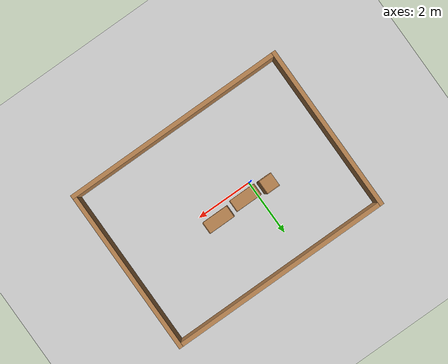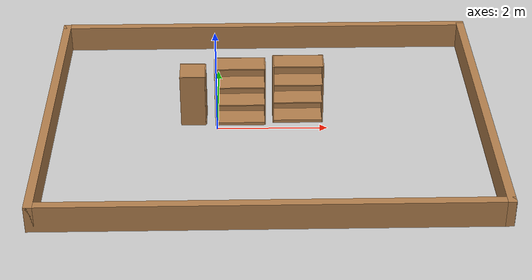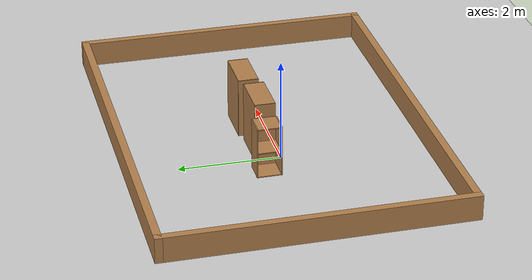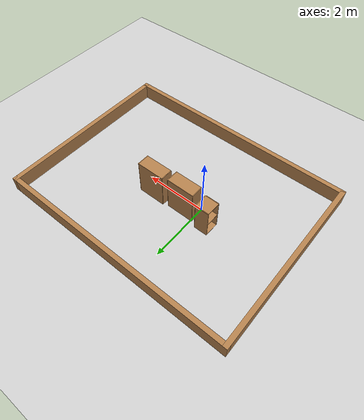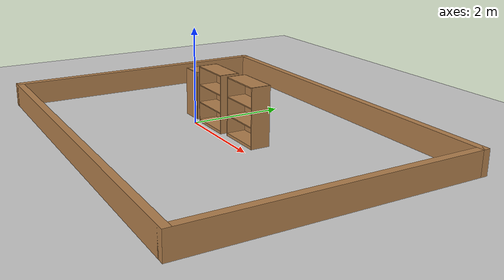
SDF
<sdf version="1.6">
 <world name="default">
  <light name="sun" type="directional">
   <pose>0 0 10 0 -0 0</pose>
   <diffuse>0.8 0.8 0.8 1</diffuse>
   <specular>0.1 0.1 0.1 1</specular>
   <attenuation>
    <range>1000</range>
    <constant>0.9</constant>
    <linear>0.01</linear>
    <quadratic>0.001</quadratic>
   </attenuation>
   <direction>-0.5 0.5 -1</direction>
  </light>
  <model name="ground_plane">
   <static>1</static>
   <link name="link">
    <collision name="collision">
     <geometry><plane><normal>0 0 1</normal><size>100 100</size></plane></geometry>
     <surface><friction><ode><mu>100</mu><mu2>50</mu2></ode></friction></surface>
    </collision>
    <visual name="visual">
     <cast_shadows>0</cast_shadows>
     <geometry><plane><normal>0 0 1</normal><size>100 100</size></plane></geometry>
     <material>
      <script><uri>file://media/materials/scripts/gazebo.material</uri><name>Gazebo/Grey</name></script>
     </material>
    </visual>
   </link>
  </model>
  <gravity>0 0 -9.8</gravity>
  <magnetic_field>6e-06 2.3e-05 -4.2e-05</magnetic_field>
  <atmosphere type="adiabatic"/>
  <physics name="default_physics" default="0" type="ode">
   <max_step_size>0.001</max_step_size>
   <real_time_factor>1</real_time_factor>
   <real_time_update_rate>1000</real_time_update_rate>
  </physics>
  <scene><ambient>0.4 0.4 0.4 1</ambient><background>0.7 0.7 0.7 1</background><shadows>1</shadows></scene>
  <spherical_coordinates>
   <surface_model>EARTH_WGS84</surface_model>
   <latitude_deg>0</latitude_deg>
   <longitude_deg>0</longitude_deg>
   <elevation>0</elevation>
   <heading_deg>0</heading_deg>
  </spherical_coordinates>
  <model name="cabinet">
   <static>1</static>
   <link name="cabinet_bottom_plate">
    <inertial>
     <pose>0 0 -1 0 -0 0</pose>
     <inertia><ixx>2.05</ixx><ixy>0</ixy><ixz>0</ixz><iyy>2.05</iyy><iyz>0</iyz><izz>2.05</izz></inertia>
     <mass>25</mass>
    </inertial>
    <collision name="cabinet_bottom_plate_geom">
     <pose>0 0 0.01 0 -0 0</pose>
     <geometry><box><size>0.45 0.45 0.02</size></box></geometry>
    </collision>
    <visual name="cabinet_bottom_plate_geom_visual">
     <pose>0 0 0.01 0 -0 0</pose>
     <geometry><box><size>0.45 0.45 0.02</size></box></geometry>
     <material>
      <script><uri>file://media/materials/scripts/gazebo.material</uri><name>Gazebo/Wood</name></script>
     </material>
    </visual>
    <collision name="cabinet_bottom_plate_geom_cabinet_back_plate">
     <pose>0.235 0 0.51 0 -0 0</pose>
     <geometry><box><size>0.02 0.45 1.02</size></box></geometry>
    </collision>
    <visual name="cabinet_bottom_plate_geom_cabinet_back_plate_visual">
     <pose>0.235 0 0.51 0 -0 0</pose>
     <geometry><box><size>0.02 0.45 1.02</size></box></geometry>
     <material>
      <script><uri>file://media/materials/scripts/gazebo.material</uri><name>Gazebo/Wood</name></script>
     </material>
    </visual>
    <collision name="cabinet_bottom_plate_geom_cabinet_left_plate">
     <pose>0 0.235 0.51 0 -0 0</pose>
     <geometry><box><size>0.45 0.02 1.02</size></box></geometry>
    </collision>
    <visual name="cabinet_bottom_plate_geom_cabinet_left_plate_visual">
     <pose>0 0.235 0.51 0 -0 0</pose>
     <geometry><box><size>0.45 0.02 1.02</size></box></geometry>
     <material>
      <script><uri>file://media/materials/scripts/gazebo.material</uri><name>Gazebo/Wood</name></script>
     </material>
    </visual>
    <collision name="cabinet_bottom_plate_geom_cabinet_middle_plate">
     <pose>0 0 0.51 0 -0 0</pose>
     <geometry><box><size>0.45 0.45 0.02</size></box></geometry>
    </collision>
    <visual name="cabinet_bottom_plate_geom_cabinet_middle_plate_visual">
     <pose>0 0 0.51 0 -0 0</pose>
     <geometry><box><size>0.45 0.45 0.02</size></box></geometry>
     <material>
      <script><uri>file://media/materials/scripts/gazebo.material</uri><name>Gazebo/Wood</name></script>
     </material>
    </visual>
    <collision name="cabinet_bottom_plate_geom_cabinet_right_plate">
     <pose>0 -0.235 0.51 0 -0 0</pose>
     <geometry><box><size>0.45 0.02 1.02</size></box></geometry>
    </collision>
    <visual name="cabinet_bottom_plate_geom_cabinet_right_plate_visual">
     <pose>0 -0.235 0.51 0 -0 0</pose>
     <geometry><box><size>0.45 0.02 1.02</size></box></geometry>
     <material>
      <script><uri>file://media/materials/scripts/gazebo.material</uri><name>Gazebo/Wood</name></script>
     </material>
    </visual>
    <collision name="cabinet_bottom_plate_geom_cabinet_top_plate">
     <pose>0 0 1.01 0 -0 0</pose>
     <geometry><box><size>0.45 0.45 0.02</size></box></geometry>
    </collision>
    <visual name="cabinet_bottom_plate_geom_cabinet_top_plate_visual">
     <pose>0 0 1.01 0 -0 0</pose>
     <geometry><box><size>0.45 0.45 0.02</size></box></geometry>
     <material>
      <script><uri>file://media/materials/scripts/gazebo.material</uri><name>Gazebo/Wood</name></script>
     </material>
    </visual>
   </link>
   <pose>-0.438592 0.378971 0 0 -0 0</pose>
  </model>
  <model name="Untitled">
   <pose>0.906 0.043 0 0 -0 0</pose>
   <link name="Wall_3">
    <collision name="Wall_3_Collision">
     <geometry><box><size>6 0.15 0.5</size></box></geometry>
     <pose>0 0 0.25 0 -0 0</pose>
    </collision>
    <visual name="Wall_3_Visual">
     <pose>0 0 0.25 0 -0 0</pose>
     <geometry><box><size>6 0.15 0.5</size></box></geometry>
     <material>
      <script><uri>file://media/materials/scripts/gazebo.material</uri><name>Gazebo/Wood</name></script>
      <ambient>1 1 1 1</ambient>
     </material>
    </visual>
    <pose>-3.925 0 0 0 0 -1.5708</pose>
   </link>
   <link name="Wall_4">
    <collision name="Wall_4_Collision">
     <geometry><box><size>8 0.15 0.5</size></box></geometry>
     <pose>0 0 0.25 0 -0 0</pose>
    </collision>
    <visual name="Wall_4_Visual">
     <pose>0 0 0.25 0 -0 0</pose>
     <geometry><box><size>8 0.15 0.5</size></box></geometry>
     <material>
      <script><uri>file://media/materials/scripts/gazebo.material</uri><name>Gazebo/Wood</name></script>
      <ambient>1 1 1 1</ambient>
     </material>
    </visual>
    <pose>0 -2.925 0 0 -0 0</pose>
   </link>
   <link name="Wall_5">
    <collision name="Wall_5_Collision">
     <geometry><box><size>6 0.15 0.5</size></box></geometry>
     <pose>0 0 0.25 0 -0 0</pose>
    </collision>
    <visual name="Wall_5_Visual">
     <pose>0 0 0.25 0 -0 0</pose>
     <geometry><box><size>6 0.15 0.5</size></box></geometry>
     <material>
      <script><uri>file://media/materials/scripts/gazebo.material</uri><name>Gazebo/Wood</name></script>
      <ambient>1 1 1 1</ambient>
     </material>
    </visual>
    <pose>3.925 0 0 0 -0 1.5708</pose>
   </link>
   <link name="Wall_6">
    <collision name="Wall_6_Collision">
     <geometry><box><size>8 0.15 0.5</size></box></geometry>
     <pose>0 0 0.25 0 -0 0</pose>
    </collision>
    <visual name="Wall_6_Visual">
     <pose>0 0 0.25 0 -0 0</pose>
     <geometry><box><size>8 0.15 0.5</size></box></geometry>
     <material>
      <script><uri>file://media/materials/scripts/gazebo.material</uri><name>Gazebo/Wood</name></script>
      <ambient>1 1 1 1</ambient>
     </material>
    </visual>
    <pose>0 2.925 0 0 -0 3.14159</pose>
   </link>
   <static>1</static>
  </model>
  <model name="bookshelf">
   <static>1</static>
   <link name="link">
    <inertial><mass>1</mass></inertial>
    <collision name="back">
     <pose>0 0.005 0.6 0 -0 0</pose>
     <geometry><box><size>0.9 0.01 1.2</size></box></geometry>
    </collision>
    <visual name="visual1">
     <pose>0 0.005 0.6 0 -0 0</pose>
     <geometry><box><size>0.9 0.01 1.2</size></box></geometry>
     <material>
      <script><uri>file://media/materials/scripts/gazebo.material</uri><name>Gazebo/Wood</name></script>
     </material>
    </visual>
    <collision name="left_side">
     <pose>0.45 -0.195 0.6 0 -0 0</pose>
     <geometry><box><size>0.02 0.4 1.2</size></box></geometry>
    </collision>
    <visual name="visual2">
     <pose>0.45 -0.195 0.6 0 -0 0</pose>
     <geometry><box><size>0.02 0.4 1.2</size></box></geometry>
     <material>
      <script><uri>file://media/materials/scripts/gazebo.material</uri><name>Gazebo/Wood</name></script>
     </material>
    </visual>
    <collision name="right_side">
     <pose>-0.45 -0.195 0.6 0 -0 0</pose>
     <geometry><box><size>0.02 0.4 1.2</size></box></geometry>
    </collision>
    <visual name="visual3">
     <pose>-0.45 -0.195 0.6 0 -0 0</pose>
     <geometry><box><size>0.02 0.4 1.2</size></box></geometry>
     <material>
      <script><uri>file://media/materials/scripts/gazebo.material</uri><name>Gazebo/Wood</name></script>
     </material>
    </visual>
    <collision name="bottom">
     <pose>0 -0.195 0.03 0 -0 0</pose>
     <geometry><box><size>0.88 0.4 0.06</size></box></geometry>
    </collision>
    <visual name="visual4">
     <pose>0 -0.195 0.03 0 -0 0</pose>
     <geometry><box><size>0.88 0.4 0.06</size></box></geometry>
     <material>
      <script><uri>file://media/materials/scripts/gazebo.material</uri><name>Gazebo/Wood</name></script>
     </material>
    </visual>
    <collision name="top">
     <pose>0 -0.195 1.19 0 -0 0</pose>
     <geometry><box><size>0.88 0.4 0.02</size></box></geometry>
    </collision>
    <visual name="visual5">
     <pose>0 -0.195 1.19 0 -0 0</pose>
     <geometry><box><size>0.88 0.4 0.02</size></box></geometry>
     <material>
      <script><uri>file://media/materials/scripts/gazebo.material</uri><name>Gazebo/Wood</name></script>
     </material>
    </visual>
    <collision name="low_shelf">
     <pose>0 -0.195 0.43 0 -0 0</pose>
     <geometry><box><size>0.88 0.4 0.02</size></box></geometry>
    </collision>
    <visual name="visual6">
     <pose>0 -0.195 0.43 0 -0 0</pose>
     <geometry><box><size>0.88 0.4 0.02</size></box></geometry>
     <material>
      <script><uri>file://media/materials/scripts/gazebo.material</uri><name>Gazebo/Wood</name></script>
     </material>
    </visual>
    <collision name="high_shelf">
     <pose>0 -0.195 0.8 0 -0 0</pose>
     <geometry><box><size>0.88 0.4 0.02</size></box></geometry>
    </collision>
    <visual name="visual7">
     <pose>0 -0.195 0.8 0 -0 0</pose>
     <geometry><box><size>0.88 0.4 0.02</size></box></geometry>
     <material>
      <script><uri>file://media/materials/scripts/gazebo.material</uri><name>Gazebo/Wood</name></script>
     </material>
    </visual>
   </link>
   <pose>1.47344 0.578896 0 0 -0 0</pose>
  </model>
  <model name="bookshelf_0">
   <static>1</static>
   <link name="link">
    <inertial><mass>1</mass></inertial>
    <collision name="back">
     <pose>0 0.005 0.6 0 -0 0</pose>
     <geometry><box><size>0.9 0.01 1.2</size></box></geometry>
    </collision>
    <visual name="visual1">
     <pose>0 0.005 0.6 0 -0 0</pose>
     <geometry><box><size>0.9 0.01 1.2</size></box></geometry>
     <material>
      <script><uri>file://media/materials/scripts/gazebo.material</uri><name>Gazebo/Wood</name></script>
     </material>
    </visual>
    <collision name="left_side">
     <pose>0.45 -0.195 0.6 0 -0 0</pose>
     <geometry><box><size>0.02 0.4 1.2</size></box></geometry>
    </collision>
    <visual name="visual2">
     <pose>0.45 -0.195 0.6 0 -0 0</pose>
     <geometry><box><size>0.02 0.4 1.2</size></box></geometry>
     <material>
      <script><uri>file://media/materials/scripts/gazebo.material</uri><name>Gazebo/Wood</name></script>
     </material>
    </visual>
    <collision name="right_side">
     <pose>-0.45 -0.195 0.6 0 -0 0</pose>
     <geometry><box><size>0.02 0.4 1.2</size></box></geometry>
    </collision>
    <visual name="visual3">
     <pose>-0.45 -0.195 0.6 0 -0 0</pose>
     <geometry><box><size>0.02 0.4 1.2</size></box></geometry>
     <material>
      <script><uri>file://media/materials/scripts/gazebo.material</uri><name>Gazebo/Wood</name></script>
     </material>
    </visual>
    <collision name="bottom">
     <pose>0 -0.195 0.03 0 -0 0</pose>
     <geometry><box><size>0.88 0.4 0.06</size></box></geometry>
    </collision>
    <visual name="visual4">
     <pose>0 -0.195 0.03 0 -0 0</pose>
     <geometry><box><size>0.88 0.4 0.06</size></box></geometry>
     <material>
      <script><uri>file://media/materials/scripts/gazebo.material</uri><name>Gazebo/Wood</name></script>
     </material>
    </visual>
    <collision name="top">
     <pose>0 -0.195 1.19 0 -0 0</pose>
     <geometry><box><size>0.88 0.4 0.02</size></box></geometry>
    </collision>
    <visual name="visual5">
     <pose>0 -0.195 1.19 0 -0 0</pose>
     <geometry><box><size>0.88 0.4 0.02</size></box></geometry>
     <material>
      <script><uri>file://media/materials/scripts/gazebo.material</uri><name>Gazebo/Wood</name></script>
     </material>
    </visual>
    <collision name="low_shelf">
     <pose>0 -0.195 0.43 0 -0 0</pose>
     <geometry><box><size>0.88 0.4 0.02</size></box></geometry>
    </collision>
    <visual name="visual6">
     <pose>0 -0.195 0.43 0 -0 0</pose>
     <geometry><box><size>0.88 0.4 0.02</size></box></geometry>
     <material>
      <script><uri>file://media/materials/scripts/gazebo.material</uri><name>Gazebo/Wood</name></script>
     </material>
    </visual>
    <collision name="high_shelf">
     <pose>0 -0.195 0.8 0 -0 0</pose>
     <geometry><box><size>0.88 0.4 0.02</size></box></geometry>
    </collision>
    <visual name="visual7">
     <pose>0 -0.195 0.8 0 -0 0</pose>
     <geometry><box><size>0.88 0.4 0.02</size></box></geometry>
     <material>
      <script><uri>file://media/materials/scripts/gazebo.material</uri><name>Gazebo/Wood</name></script>
     </material>
    </visual>
   </link>
   <pose>0.423286 0.509478 0 0 -0 0</pose>
  </model>
 </world>
</sdf>
